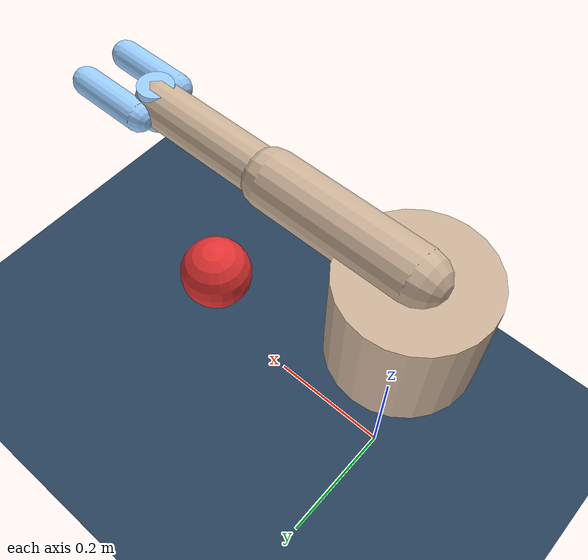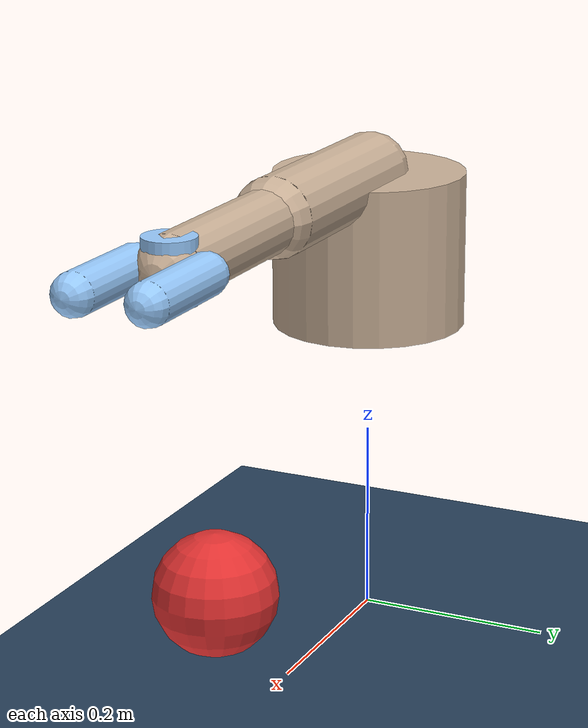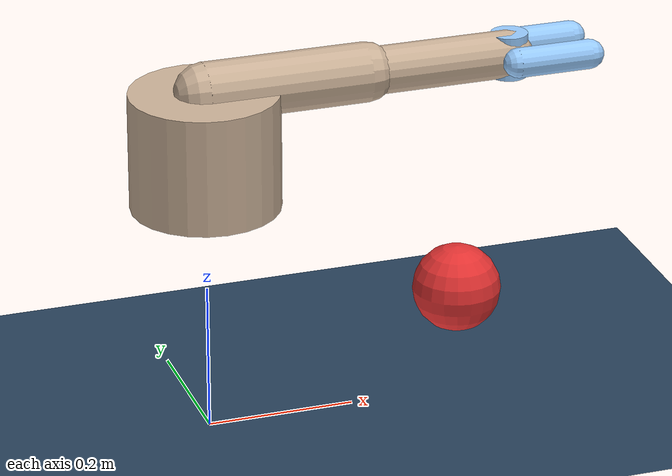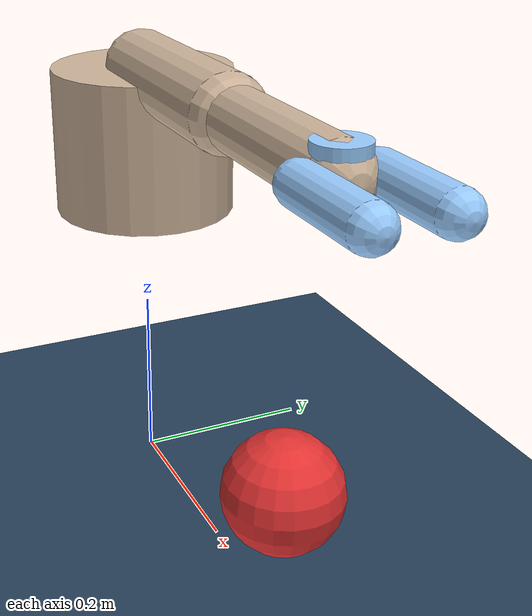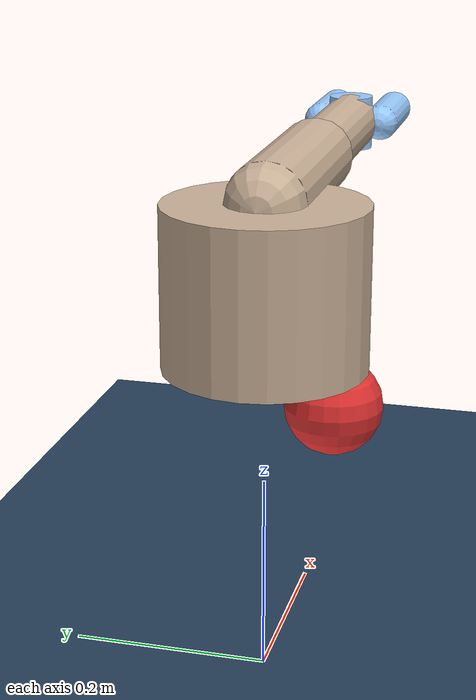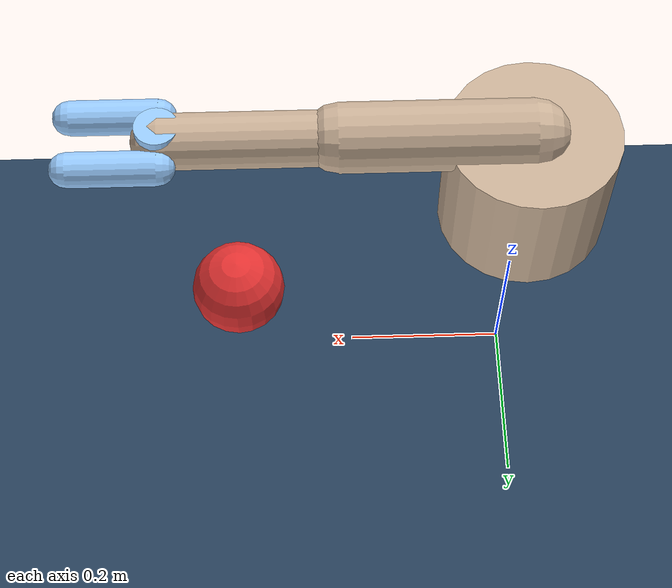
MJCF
<mujoco model="ArmWithGripper">
  <option timestep="0.002"/>

  <visual>
    <map force="0.1" zfar="30"/>
    <rgba haze="0.15 0.25 0.35 1"/>
  </visual>

  <asset>
    <texture name="grid" type="2d" builtin="checker" width="512" height="512" rgb1=".1 .2 .3" rgb2=".2 .3 .4"/>
    <material name="grid" texture="grid" texrepeat="1 1" texuniform="true" reflectance=".2"/>
    <material name="arm" rgba="0.8 0.7 0.6 1"/>
    <material name="gripper" rgba="0.6 0.8 1.0 1"/>
    <material name="target" rgba="0.9 0.2 0.2 1"/>
  </asset>

  <default>
    <!-- 仅保留支持的默认参数：joint/geom/motor -->
    <joint armature="0.01" damping="1.2" limited="true"/>
    <geom conaffinity="1" condim="3" friction="1.5 0.1 0.1"
          solimp="0.9 0.95 0.01" solref="0.02 1" mass="0.1"/>
    <motor ctrllimited="true" ctrlrange="-2 2" gear="60"/>
  </default>

  <worldbody>
    <geom name="floor" type="plane" size="1 1 0.05" material="grid"/>
    <light pos="0 -3 2" dir="0 3 -2" diffuse="1 1 1"/>

    <!-- 抓取小球：使用标准free类型joint，无多余属性 -->
    <body name="target" pos="0.35 0 0.15">
      <geom name="target" type="sphere" size="0.06" material="target" mass="0.05"/>
      <!-- 标准自由关节（无damping，改用接触阻尼实现稳定效果） -->
      <joint name="target_joint" type="free"/>
    </body>

    <!-- 机械臂基座 -->
    <body name="base" pos="0 0 0.4">
      <geom name="base" type="cylinder" size="0.1 0.08" material="arm" mass="0.5"/>

      <!-- 大臂 -->
      <body name="upper" pos="0 0 0.08">
        <joint name="shoulder" type="hinge" axis="0 1 0" range="-1.57 1.57"/>
        <geom name="upper" type="capsule" fromto="0 0 0 0.22 0 0" size="0.04" material="arm" mass="0.15"/>

        <!-- 小臂 -->
        <body name="lower" pos="0.22 0 0">
          <joint name="elbow" type="hinge" axis="0 1 0" range="-2.0 2.0"/>
          <geom name="lower" type="capsule" fromto="0 0 0 0.20 0 0" size="0.032" material="arm" mass="0.1"/>

          <!-- 夹持器 -->
          <body name="wrist" pos="0.20 0 0">
            <geom name="wrist" type="cylinder" size="0.025 0.03" material="gripper" mass="0.05"/>

            <!-- 左手指 -->
            <body name="left_finger" pos="0 0.035 0">
              <joint name="left_joint" type="hinge" axis="1 0 0" range="0 0.8"/>
              <geom name="left_fng" type="capsule" fromto="0 0 0 0.10 0 0" size="0.02" material="gripper" mass="0.02"/>
            </body>

            <!-- 右手指 -->
            <body name="right_finger" pos="0 -0.035 0">
              <joint name="right_joint" type="hinge" axis="1 0 0" range="0 0.8"/>
              <geom name="right_fng" type="capsule" fromto="0 0 0 0.10 0 0" size="0.02" material="gripper" mass="0.02"/>
            </body>
          </body>
        </body>
      </body>
    </body>
  </worldbody>

  <actuator>
    <motor name="shoulder" joint="shoulder"/>
    <motor name="elbow" joint="elbow"/>
    <motor name="left" joint="left_joint"/>
    <motor name="right" joint="right_joint"/>
  </actuator>

  <!-- 接触约束：提升抓取稳定性（替代小球阻尼） -->
  <contact>
    <pair geom1="left_fng" geom2="target" solref=".01 1.5" solimp=".9 .99 .001" friction="2.0"/>
    <pair geom1="right_fng" geom2="target" solref=".01 1.5" solimp=".9 .99 .001" friction="2.0"/>
    <!-- 小球与地面的接触阻尼，避免滑动过远 -->
    <pair geom1="target" geom2="floor" solref=".01 2.0" friction="1.0"/>
  </contact>
</mujoco>
